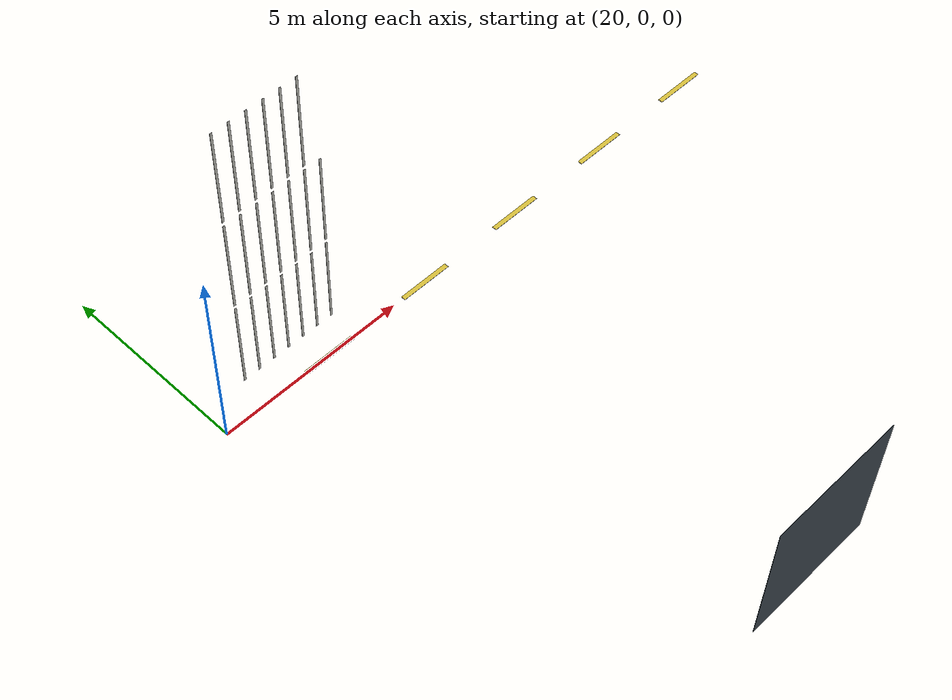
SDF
<sdf version="1.9">
 <world name="iris_mppi_industrial_yard">
  <model name="south_loading_door_26">
   <static>true</static>
   <pose>26 -10.995 1.8 0 0 0</pose>
   <link name="body">
    <visual name="visual">
     <geometry><box><size>3.5 0.01 3.6</size></box></geometry>
     <material><ambient>.25 .29 .32 1</ambient><diffuse>.25 .29 .32 1</diffuse></material>
    </visual>
   </link>
  </model>
  <model name="rib_1_0_7_-1">
   <static>true</static>
   <pose>21.21 0.782 1.3 0 0 0</pose>
   <link name="body">
    <visual name="visual">
     <geometry><box><size>0.06 0.008 2.5</size></box></geometry>
     <material><ambient>.75 .75 .72 1</ambient><diffuse>.75 .75 .72 1</diffuse></material>
    </visual>
   </link>
  </model>
  <model name="rib_1_0_8_-1">
   <static>true</static>
   <pose>21.64 0.782 1.3 0 0 0</pose>
   <link name="body">
    <visual name="visual">
     <geometry><box><size>0.06 0.008 2.5</size></box></geometry>
     <material><ambient>.75 .75 .72 1</ambient><diffuse>.75 .75 .72 1</diffuse></material>
    </visual>
   </link>
  </model>
  <model name="rib_1_0_9_-1">
   <static>true</static>
   <pose>22.07 0.782 1.3 0 0 0</pose>
   <link name="body">
    <visual name="visual">
     <geometry><box><size>0.06 0.008 2.5</size></box></geometry>
     <material><ambient>.75 .75 .72 1</ambient><diffuse>.75 .75 .72 1</diffuse></material>
    </visual>
   </link>
  </model>
  <model name="rib_1_0_10_-1">
   <static>true</static>
   <pose>22.5 0.782 1.3 0 0 0</pose>
   <link name="body">
    <visual name="visual">
     <geometry><box><size>0.06 0.008 2.5</size></box></geometry>
     <material><ambient>.75 .75 .72 1</ambient><diffuse>.75 .75 .72 1</diffuse></material>
    </visual>
   </link>
  </model>
  <model name="rib_1_0_11_-1">
   <static>true</static>
   <pose>22.93 0.782 1.3 0 0 0</pose>
   <link name="body">
    <visual name="visual">
     <geometry><box><size>0.06 0.008 2.5</size></box></geometry>
     <material><ambient>.75 .75 .72 1</ambient><diffuse>.75 .75 .72 1</diffuse></material>
    </visual>
   </link>
  </model>
  <model name="rib_1_0_12_-1">
   <static>true</static>
   <pose>23.36 0.782 1.3 0 0 0</pose>
   <link name="body">
    <visual name="visual">
     <geometry><box><size>0.06 0.008 2.5</size></box></geometry>
     <material><ambient>.75 .75 .72 1</ambient><diffuse>.75 .75 .72 1</diffuse></material>
    </visual>
   </link>
  </model>
  <model name="rib_1_0_13_-1">
   <static>true</static>
   <pose>23.79 0.782 1.3 0 0 0</pose>
   <link name="body">
    <visual name="visual">
     <geometry><box><size>0.06 0.008 2.5</size></box></geometry>
     <material><ambient>.75 .75 .72 1</ambient><diffuse>.75 .75 .72 1</diffuse></material>
    </visual>
   </link>
  </model>
  <model name="rib_1_1_7_-1">
   <static>true</static>
   <pose>21.21 0.782 3.9000000000000004 0 0 0</pose>
   <link name="body">
    <visual name="visual">
     <geometry><box><size>0.06 0.008 2.5</size></box></geometry>
     <material><ambient>.75 .75 .72 1</ambient><diffuse>.75 .75 .72 1</diffuse></material>
    </visual>
   </link>
  </model>
  <model name="rib_1_1_8_-1">
   <static>true</static>
   <pose>21.64 0.782 3.9000000000000004 0 0 0</pose>
   <link name="body">
    <visual name="visual">
     <geometry><box><size>0.06 0.008 2.5</size></box></geometry>
     <material><ambient>.75 .75 .72 1</ambient><diffuse>.75 .75 .72 1</diffuse></material>
    </visual>
   </link>
  </model>
  <model name="rib_1_1_9_-1">
   <static>true</static>
   <pose>22.07 0.782 3.9000000000000004 0 0 0</pose>
   <link name="body">
    <visual name="visual">
     <geometry><box><size>0.06 0.008 2.5</size></box></geometry>
     <material><ambient>.75 .75 .72 1</ambient><diffuse>.75 .75 .72 1</diffuse></material>
    </visual>
   </link>
  </model>
  <model name="rib_1_1_10_-1">
   <static>true</static>
   <pose>22.5 0.782 3.9000000000000004 0 0 0</pose>
   <link name="body">
    <visual name="visual">
     <geometry><box><size>0.06 0.008 2.5</size></box></geometry>
     <material><ambient>.75 .75 .72 1</ambient><diffuse>.75 .75 .72 1</diffuse></material>
    </visual>
   </link>
  </model>
  <model name="rib_1_1_11_-1">
   <static>true</static>
   <pose>22.93 0.782 3.9000000000000004 0 0 0</pose>
   <link name="body">
    <visual name="visual">
     <geometry><box><size>0.06 0.008 2.5</size></box></geometry>
     <material><ambient>.75 .75 .72 1</ambient><diffuse>.75 .75 .72 1</diffuse></material>
    </visual>
   </link>
  </model>
  <model name="rib_1_1_12_-1">
   <static>true</static>
   <pose>23.36 0.782 3.9000000000000004 0 0 0</pose>
   <link name="body">
    <visual name="visual">
     <geometry><box><size>0.06 0.008 2.5</size></box></geometry>
     <material><ambient>.75 .75 .72 1</ambient><diffuse>.75 .75 .72 1</diffuse></material>
    </visual>
   </link>
  </model>
  <model name="rib_1_1_13_-1">
   <static>true</static>
   <pose>23.79 0.782 3.9000000000000004 0 0 0</pose>
   <link name="body">
    <visual name="visual">
     <geometry><box><size>0.06 0.008 2.5</size></box></geometry>
     <material><ambient>.75 .75 .72 1</ambient><diffuse>.75 .75 .72 1</diffuse></material>
    </visual>
   </link>
  </model>
  <model name="rib_1_2_7_-1">
   <static>true</static>
   <pose>21.21 0.782 6.5 0 0 0</pose>
   <link name="body">
    <visual name="visual">
     <geometry><box><size>0.06 0.008 2.5</size></box></geometry>
     <material><ambient>.75 .75 .72 1</ambient><diffuse>.75 .75 .72 1</diffuse></material>
    </visual>
   </link>
  </model>
  <model name="rib_1_2_8_-1">
   <static>true</static>
   <pose>21.64 0.782 6.5 0 0 0</pose>
   <link name="body">
    <visual name="visual">
     <geometry><box><size>0.06 0.008 2.5</size></box></geometry>
     <material><ambient>.75 .75 .72 1</ambient><diffuse>.75 .75 .72 1</diffuse></material>
    </visual>
   </link>
  </model>
  <model name="rib_1_2_9_-1">
   <static>true</static>
   <pose>22.07 0.782 6.5 0 0 0</pose>
   <link name="body">
    <visual name="visual">
     <geometry><box><size>0.06 0.008 2.5</size></box></geometry>
     <material><ambient>.75 .75 .72 1</ambient><diffuse>.75 .75 .72 1</diffuse></material>
    </visual>
   </link>
  </model>
  <model name="rib_1_2_10_-1">
   <static>true</static>
   <pose>22.5 0.782 6.5 0 0 0</pose>
   <link name="body">
    <visual name="visual">
     <geometry><box><size>0.06 0.008 2.5</size></box></geometry>
     <material><ambient>.75 .75 .72 1</ambient><diffuse>.75 .75 .72 1</diffuse></material>
    </visual>
   </link>
  </model>
  <model name="rib_1_2_11_-1">
   <static>true</static>
   <pose>22.93 0.782 6.5 0 0 0</pose>
   <link name="body">
    <visual name="visual">
     <geometry><box><size>0.06 0.008 2.5</size></box></geometry>
     <material><ambient>.75 .75 .72 1</ambient><diffuse>.75 .75 .72 1</diffuse></material>
    </visual>
   </link>
  </model>
  <model name="rib_1_2_12_-1">
   <static>true</static>
   <pose>23.36 0.782 6.5 0 0 0</pose>
   <link name="body">
    <visual name="visual">
     <geometry><box><size>0.06 0.008 2.5</size></box></geometry>
     <material><ambient>.75 .75 .72 1</ambient><diffuse>.75 .75 .72 1</diffuse></material>
    </visual>
   </link>
  </model>
  <model name="road_dash_23">
   <static>true</static>
   <pose>23 0 0.006 0 0 0</pose>
   <link name="body">
    <visual name="visual">
     <geometry><box><size>1.4 0.12 0.01</size></box></geometry>
     <material><ambient>.9 .8 .25 1</ambient><diffuse>.9 .8 .25 1</diffuse></material>
    </visual>
   </link>
  </model>
  <model name="road_dash_26">
   <static>true</static>
   <pose>26 0 0.006 0 0 0</pose>
   <link name="body">
    <visual name="visual">
     <geometry><box><size>1.4 0.12 0.01</size></box></geometry>
     <material><ambient>.9 .8 .25 1</ambient><diffuse>.9 .8 .25 1</diffuse></material>
    </visual>
   </link>
  </model>
  <model name="road_dash_29">
   <static>true</static>
   <pose>29 0 0.006 0 0 0</pose>
   <link name="body">
    <visual name="visual">
     <geometry><box><size>1.4 0.12 0.01</size></box></geometry>
     <material><ambient>.9 .8 .25 1</ambient><diffuse>.9 .8 .25 1</diffuse></material>
    </visual>
   </link>
  </model>
  <model name="road_dash_32">
   <static>true</static>
   <pose>32 0 0.006 0 0 0</pose>
   <link name="body">
    <visual name="visual">
     <geometry><box><size>1.4 0.12 0.01</size></box></geometry>
     <material><ambient>.9 .8 .25 1</ambient><diffuse>.9 .8 .25 1</diffuse></material>
    </visual>
   </link>
  </model>
  <model name="road_dash_35">
   <static>true</static>
   <pose>35 0 0.006 0 0 0</pose>
   <link name="body">
    <visual name="visual">
     <geometry><box><size>1.4 0.12 0.01</size></box></geometry>
     <material><ambient>.9 .8 .25 1</ambient><diffuse>.9 .8 .25 1</diffuse></material>
    </visual>
   </link>
  </model>
 </world>
</sdf>
